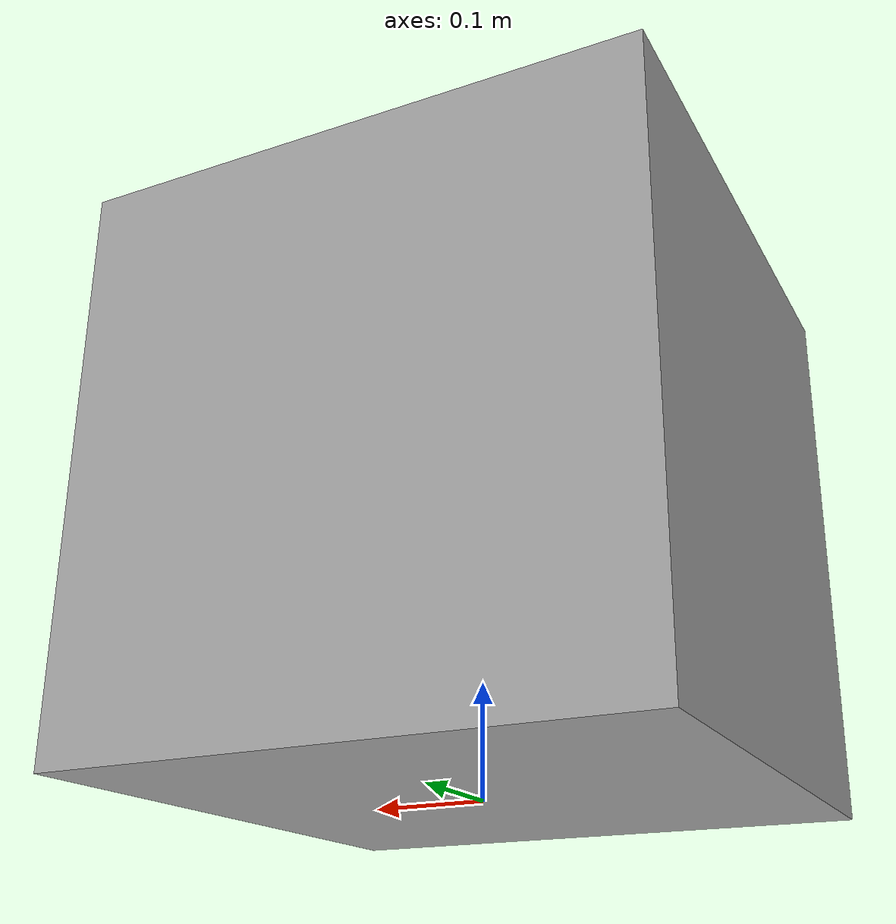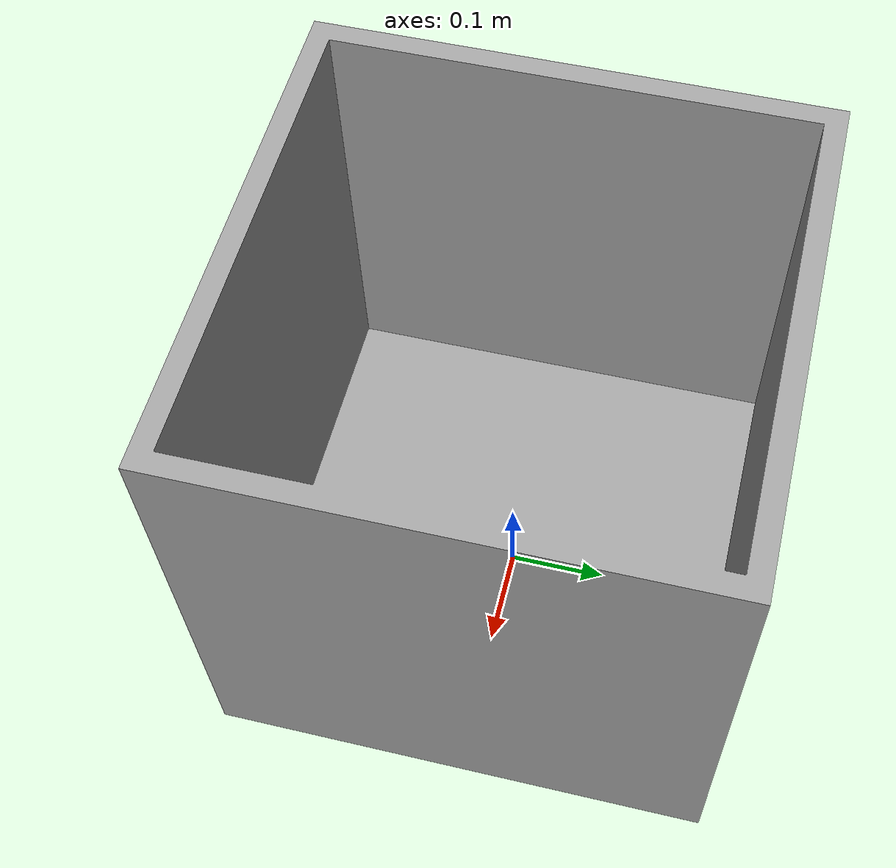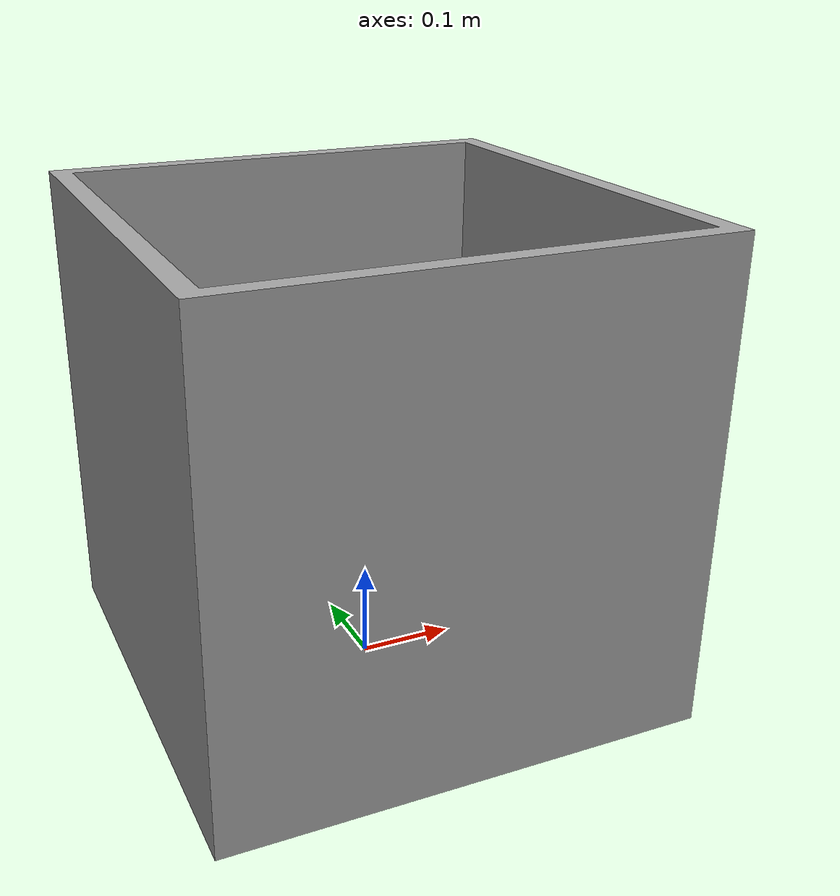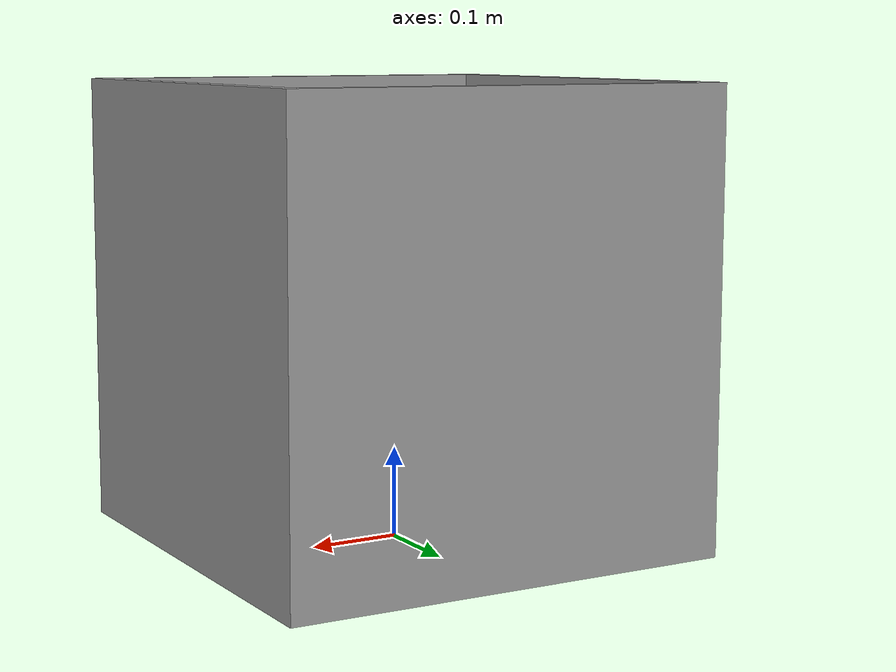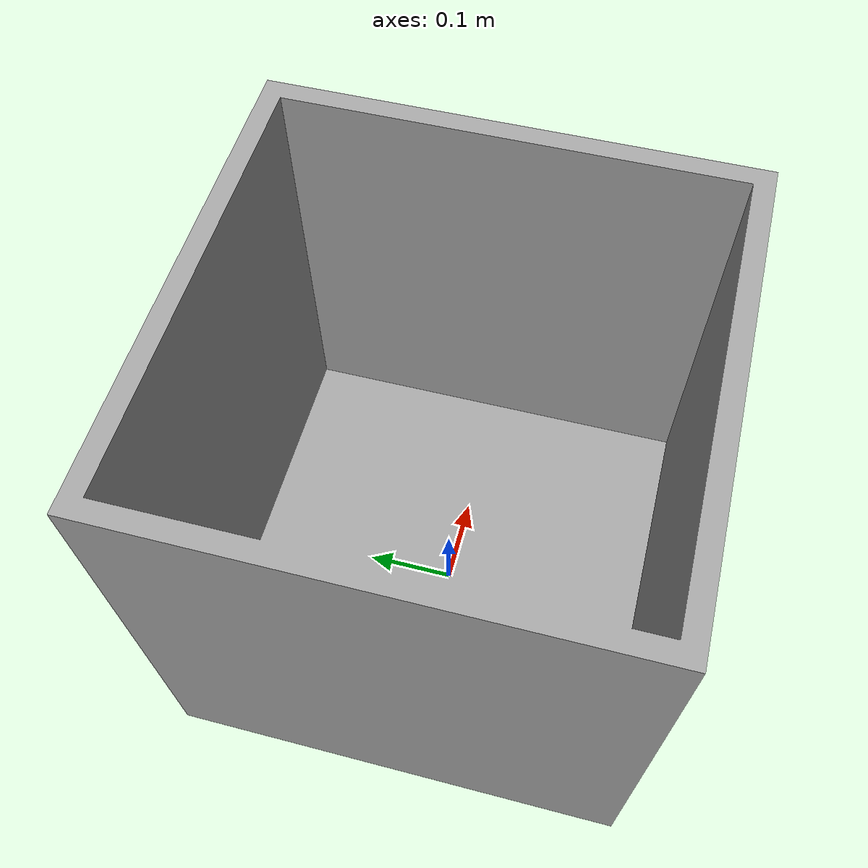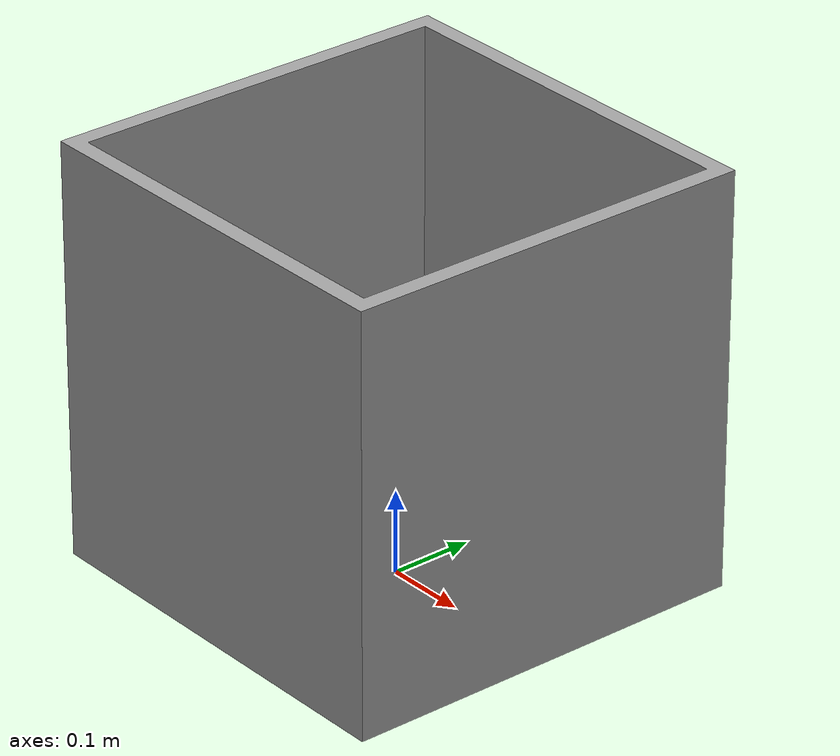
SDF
<?xml version="1.0" ?>
<sdf version='1.4'>
  <model name="container">
      <static>1</static>
      <link name='link'>
        <collision name="collision">
          <geometry>
            <mesh>
              <uri>model://container/model.dae</uri>
            </mesh>
          </geometry>
        </collision>
        <visual name='visual'>
          <geometry>
            <mesh>
              <uri>model://container/model.dae</uri>
            </mesh>
          </geometry>
          <material>
            <script>
              <uri>model://container/model.dae</uri>
              <name></name>
            </script>
          </material>
        </visual>
        <velocity_decay>
          <linear>0.000000</linear>
          <angular>0.000000</angular>
        </velocity_decay>
        <self_collide>0</self_collide>
        <kinematic>0</kinematic>
        <gravity>0</gravity>
      </link>
  </model>
</sdf>
